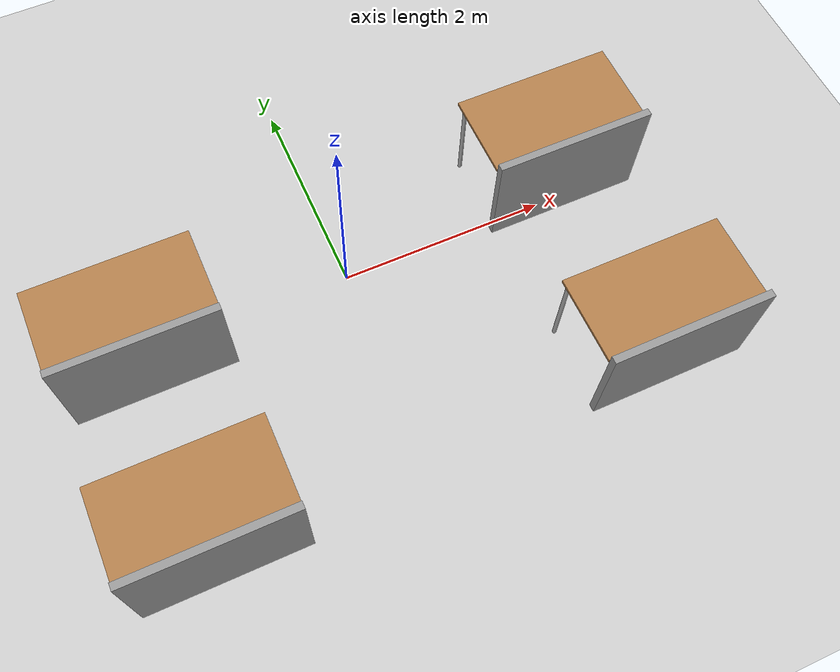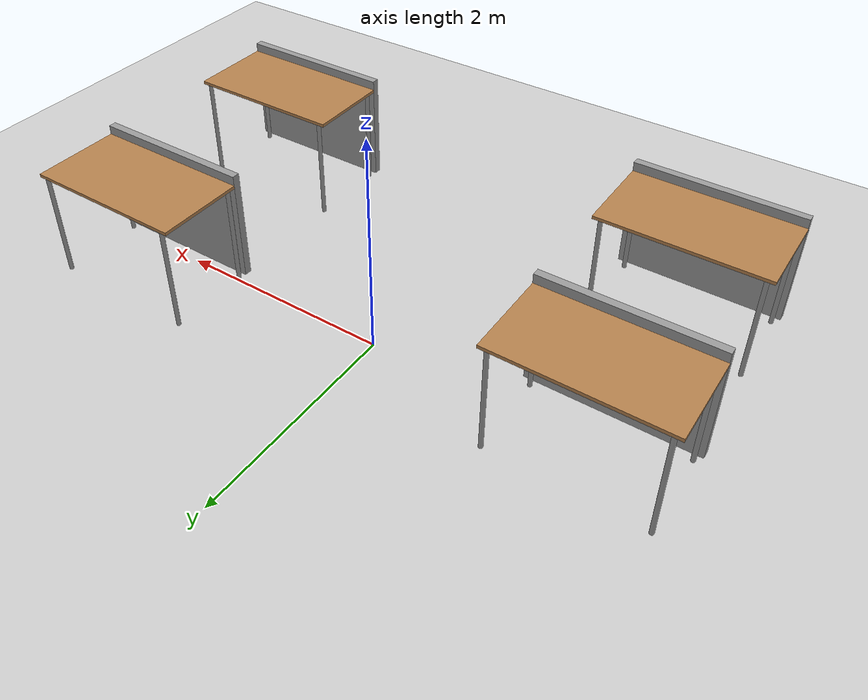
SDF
<sdf version="1.7">
 <world name="default">
  <model name="ground_plane">
   <static>1</static>
   <link name="link">
    <collision name="collision">
     <geometry><plane><normal>0 0 1</normal><size>100 100</size></plane></geometry>
     <surface>
      <contact><collide_bitmask>65535</collide_bitmask></contact>
      <friction><ode><mu>100</mu><mu2>50</mu2></ode></friction>
     </surface>
    </collision>
    <visual name="visual">
     <cast_shadows>0</cast_shadows>
     <geometry><plane><normal>0 0 1</normal><size>100 100</size></plane></geometry>
     <material>
      <script><uri>file://media/materials/scripts/gazebo.material</uri><name>Gazebo/Grey</name></script>
     </material>
    </visual>
   </link>
  </model>
  <model name="table_1">
   <link name="link_0">
    <inertial>
     <mass>0.110662</mass>
     <inertia>
      <ixx>0.0102733</ixx>
      <ixy>0</ixy>
      <ixz>0</ixz>
      <iyy>0.0309528</iyy>
      <iyz>0</iyz>
      <izz>0.0207701</izz>
     </inertia>
    </inertial>
    <pose>-7.12226 3.41462 0.568263 0 -0 0</pose>
    <visual name="visual">
     <geometry><box><size>1.49912 0.070082 1.05314</size></box></geometry>
     <material>
      <lighting>1</lighting>
      <script><uri>file://media/materials/scripts/gazebo.material</uri><name>Gazebo/Grey</name></script>
      <shader type="pixel"/>
      <emissive>0 0 0 1</emissive>
     </material>
    </visual>
    <collision name="collision">
     <geometry><box><size>1.49912 0.070082 1.05314</size></box></geometry>
     <surface>
      <friction>
       <ode><mu>1</mu><mu2>1</mu2><fdir1>0 0 0</fdir1><slip1>0</slip1><slip2>0</slip2></ode>
       <torsional>
        <coefficient>1</coefficient>
        <patch_radius>0</patch_radius>
        <surface_radius>0</surface_radius>
        <use_patch_radius>1</use_patch_radius>
        <ode><slip>0</slip></ode>
       </torsional>
      </friction>
      <bounce><restitution_coefficient>0</restitution_coefficient><threshold>1e+06</threshold></bounce>
      <contact>
       <collide_without_contact>0</collide_without_contact>
       <collide_without_contact_bitmask>1</collide_without_contact_bitmask>
       <collide_bitmask>1</collide_bitmask>
       <ode>
        <soft_cfm>0</soft_cfm>
        <soft_erp>0.2</soft_erp>
        <kp>1e+13</kp>
        <kd>1</kd>
        <max_vel>0.01</max_vel>
        <min_depth>0</min_depth>
       </ode>
       <bullet>
        <split_impulse>1</split_impulse>
        <split_impulse_penetration_threshold>-0.01</split_impulse_penetration_threshold>
        <soft_cfm>0</soft_cfm>
        <soft_erp>0.2</soft_erp>
        <kp>1e+13</kp>
        <kd>1</kd>
       </bullet>
      </contact>
     </surface>
    </collision>
   </link>
   <model name="table_2">
    <static>1</static>
    <link name="link">
     <collision name="surface">
      <pose>0 0 1 0 -0 0</pose>
      <geometry><box><size>1.5 0.8 0.03</size></box></geometry>
      <surface><friction><ode><mu>0.6</mu><mu2>0.6</mu2></ode></friction></surface>
     </collision>
     <visual name="visual1">
      <pose>0 0 1 0 -0 0</pose>
      <geometry><box><size>1.5 0.8 0.03</size></box></geometry>
      <material>
       <script><uri>file://media/materials/scripts/gazebo.material</uri><name>Gazebo/Wood</name></script>
      </material>
     </visual>
     <collision name="front_left_leg">
      <pose>0.68 0.38 0.5 0 -0 0</pose>
      <geometry><cylinder><radius>0.02</radius><length>1</length></cylinder></geometry>
     </collision>
     <visual name="front_left_leg">
      <pose>0.68 0.38 0.5 0 -0 0</pose>
      <geometry><cylinder><radius>0.02</radius><length>1</length></cylinder></geometry>
      <material>
       <script><uri>file://media/materials/scripts/gazebo.material</uri><name>Gazebo/Grey</name></script>
      </material>
     </visual>
     <collision name="front_right_leg">
      <pose>0.68 -0.38 0.5 0 -0 0</pose>
      <geometry><cylinder><radius>0.02</radius><length>1</length></cylinder></geometry>
     </collision>
     <visual name="front_right_leg">
      <pose>0.68 -0.38 0.5 0 -0 0</pose>
      <geometry><cylinder><radius>0.02</radius><length>1</length></cylinder></geometry>
      <material>
       <script><uri>file://media/materials/scripts/gazebo.material</uri><name>Gazebo/Grey</name></script>
      </material>
     </visual>
     <collision name="back_right_leg">
      <pose>-0.68 -0.38 0.5 0 -0 0</pose>
      <geometry><cylinder><radius>0.02</radius><length>1</length></cylinder></geometry>
     </collision>
     <visual name="back_right_leg">
      <pose>-0.68 -0.38 0.5 0 -0 0</pose>
      <geometry><cylinder><radius>0.02</radius><length>1</length></cylinder></geometry>
      <material>
       <script><uri>file://media/materials/scripts/gazebo.material</uri><name>Gazebo/Grey</name></script>
      </material>
     </visual>
     <collision name="back_left_leg">
      <pose>-0.68 0.38 0.5 0 -0 0</pose>
      <geometry><cylinder><radius>0.02</radius><length>1</length></cylinder></geometry>
     </collision>
     <visual name="back_left_leg">
      <pose>-0.68 0.38 0.5 0 -0 0</pose>
      <geometry><cylinder><radius>0.02</radius><length>1</length></cylinder></geometry>
      <material>
       <script><uri>file://media/materials/scripts/gazebo.material</uri><name>Gazebo/Grey</name></script>
      </material>
     </visual>
    </link>
    <pose>-7.12644 3.85171 -0.003143 0 -0 0</pose>
   </model>
   <joint name="link_0_JOINT_1" type="fixed">
    <parent>link_0</parent>
    <child>table_2::link</child>
    <physics>
     <ode><limit><cfm>0</cfm><erp>0.2</erp></limit><suspension><cfm>0</cfm><erp>0.2</erp></suspension></ode>
    </physics>
   </joint>
   <static>0</static>
   <pose>5.15304 -5.61055 0 0 -0 0</pose>
  </model>
  <model name="table_1_1">
   <link name="link_0">
    <inertial>
     <mass>0.110662</mass>
     <inertia>
      <ixx>0.0102733</ixx>
      <ixy>0</ixy>
      <ixz>0</ixz>
      <iyy>0.0309528</iyy>
      <iyz>0</iyz>
      <izz>0.0207701</izz>
     </inertia>
    </inertial>
    <pose>-7.12226 3.41462 0.568263 0 -0 0</pose>
    <visual name="visual">
     <geometry><box><size>1.49912 0.070082 1.05314</size></box></geometry>
     <material>
      <lighting>1</lighting>
      <script><uri>file://media/materials/scripts/gazebo.material</uri><name>Gazebo/Grey</name></script>
      <shader type="pixel"/>
      <emissive>0 0 0 1</emissive>
     </material>
    </visual>
    <collision name="collision">
     <geometry><box><size>1.49912 0.070082 1.05314</size></box></geometry>
     <surface>
      <friction>
       <ode><mu>1</mu><mu2>1</mu2><fdir1>0 0 0</fdir1><slip1>0</slip1><slip2>0</slip2></ode>
       <torsional>
        <coefficient>1</coefficient>
        <patch_radius>0</patch_radius>
        <surface_radius>0</surface_radius>
        <use_patch_radius>1</use_patch_radius>
        <ode><slip>0</slip></ode>
       </torsional>
      </friction>
      <bounce><restitution_coefficient>0</restitution_coefficient><threshold>1e+06</threshold></bounce>
      <contact>
       <collide_without_contact>0</collide_without_contact>
       <collide_without_contact_bitmask>1</collide_without_contact_bitmask>
       <collide_bitmask>1</collide_bitmask>
       <ode>
        <soft_cfm>0</soft_cfm>
        <soft_erp>0.2</soft_erp>
        <kp>1e+13</kp>
        <kd>1</kd>
        <max_vel>0.01</max_vel>
        <min_depth>0</min_depth>
       </ode>
       <bullet>
        <split_impulse>1</split_impulse>
        <split_impulse_penetration_threshold>-0.01</split_impulse_penetration_threshold>
        <soft_cfm>0</soft_cfm>
        <soft_erp>0.2</soft_erp>
        <kp>1e+13</kp>
        <kd>1</kd>
       </bullet>
      </contact>
     </surface>
    </collision>
   </link>
   <model name="table_2">
    <static>1</static>
    <link name="link">
     <collision name="surface">
      <pose>0 0 1 0 -0 0</pose>
      <geometry><box><size>1.5 0.8 0.03</size></box></geometry>
      <surface><friction><ode><mu>0.6</mu><mu2>0.6</mu2></ode></friction></surface>
     </collision>
     <visual name="visual1">
      <pose>0 0 1 0 -0 0</pose>
      <geometry><box><size>1.5 0.8 0.03</size></box></geometry>
      <material>
       <script><uri>file://media/materials/scripts/gazebo.material</uri><name>Gazebo/Wood</name></script>
      </material>
     </visual>
     <collision name="front_left_leg">
      <pose>0.68 0.38 0.5 0 -0 0</pose>
      <geometry><cylinder><radius>0.02</radius><length>1</length></cylinder></geometry>
     </collision>
     <visual name="front_left_leg">
      <pose>0.68 0.38 0.5 0 -0 0</pose>
      <geometry><cylinder><radius>0.02</radius><length>1</length></cylinder></geometry>
      <material>
       <script><uri>file://media/materials/scripts/gazebo.material</uri><name>Gazebo/Grey</name></script>
      </material>
     </visual>
     <collision name="front_right_leg">
      <pose>0.68 -0.38 0.5 0 -0 0</pose>
      <geometry><cylinder><radius>0.02</radius><length>1</length></cylinder></geometry>
     </collision>
     <visual name="front_right_leg">
      <pose>0.68 -0.38 0.5 0 -0 0</pose>
      <geometry><cylinder><radius>0.02</radius><length>1</length></cylinder></geometry>
      <material>
       <script><uri>file://media/materials/scripts/gazebo.material</uri><name>Gazebo/Grey</name></script>
      </material>
     </visual>
     <collision name="back_right_leg">
      <pose>-0.68 -0.38 0.5 0 -0 0</pose>
      <geometry><cylinder><radius>0.02</radius><length>1</length></cylinder></geometry>
     </collision>
     <visual name="back_right_leg">
      <pose>-0.68 -0.38 0.5 0 -0 0</pose>
      <geometry><cylinder><radius>0.02</radius><length>1</length></cylinder></geometry>
      <material>
       <script><uri>file://media/materials/scripts/gazebo.material</uri><name>Gazebo/Grey</name></script>
      </material>
     </visual>
     <collision name="back_left_leg">
      <pose>-0.68 0.38 0.5 0 -0 0</pose>
      <geometry><cylinder><radius>0.02</radius><length>1</length></cylinder></geometry>
     </collision>
     <visual name="back_left_leg">
      <pose>-0.68 0.38 0.5 0 -0 0</pose>
      <geometry><cylinder><radius>0.02</radius><length>1</length></cylinder></geometry>
      <material>
       <script><uri>file://media/materials/scripts/gazebo.material</uri><name>Gazebo/Grey</name></script>
      </material>
     </visual>
    </link>
    <pose>-7.12644 3.85171 -0.003143 0 -0 0</pose>
   </model>
   <joint name="link_0_JOINT_1" type="fixed">
    <parent>link_0</parent>
    <child>table_2::link</child>
    <physics>
     <ode><limit><cfm>0</cfm><erp>0.2</erp></limit><suspension><cfm>0</cfm><erp>0.2</erp></suspension></ode>
    </physics>
   </joint>
   <static>0</static>
   <pose>5.14236 -3.79483 0 0 -0 0</pose>
  </model>
  <model name="table_1_2">
   <link name="link_0">
    <inertial>
     <mass>0.110662</mass>
     <inertia>
      <ixx>0.0102733</ixx>
      <ixy>0</ixy>
      <ixz>0</ixz>
      <iyy>0.0309528</iyy>
      <iyz>0</iyz>
      <izz>0.0207701</izz>
     </inertia>
    </inertial>
    <pose>-7.12226 3.41462 0.568263 0 -0 0</pose>
    <visual name="visual">
     <geometry><box><size>1.49912 0.070082 1.05314</size></box></geometry>
     <material>
      <lighting>1</lighting>
      <script><uri>file://media/materials/scripts/gazebo.material</uri><name>Gazebo/Grey</name></script>
      <shader type="pixel"/>
      <emissive>0 0 0 1</emissive>
     </material>
    </visual>
    <collision name="collision">
     <geometry><box><size>1.49912 0.070082 1.05314</size></box></geometry>
     <surface>
      <friction>
       <ode><mu>1</mu><mu2>1</mu2><fdir1>0 0 0</fdir1><slip1>0</slip1><slip2>0</slip2></ode>
       <torsional>
        <coefficient>1</coefficient>
        <patch_radius>0</patch_radius>
        <surface_radius>0</surface_radius>
        <use_patch_radius>1</use_patch_radius>
        <ode><slip>0</slip></ode>
       </torsional>
      </friction>
      <bounce><restitution_coefficient>0</restitution_coefficient><threshold>1e+06</threshold></bounce>
      <contact>
       <collide_without_contact>0</collide_without_contact>
       <collide_without_contact_bitmask>1</collide_without_contact_bitmask>
       <collide_bitmask>1</collide_bitmask>
       <ode>
        <soft_cfm>0</soft_cfm>
        <soft_erp>0.2</soft_erp>
        <kp>1e+13</kp>
        <kd>1</kd>
        <max_vel>0.01</max_vel>
        <min_depth>0</min_depth>
       </ode>
       <bullet>
        <split_impulse>1</split_impulse>
        <split_impulse_penetration_threshold>-0.01</split_impulse_penetration_threshold>
        <soft_cfm>0</soft_cfm>
        <soft_erp>0.2</soft_erp>
        <kp>1e+13</kp>
        <kd>1</kd>
       </bullet>
      </contact>
     </surface>
    </collision>
   </link>
   <model name="table_2">
    <static>1</static>
    <link name="link">
     <collision name="surface">
      <pose>0 0 1 0 -0 0</pose>
      <geometry><box><size>1.5 0.8 0.03</size></box></geometry>
      <surface><friction><ode><mu>0.6</mu><mu2>0.6</mu2></ode></friction></surface>
     </collision>
     <visual name="visual1">
      <pose>0 0 1 0 -0 0</pose>
      <geometry><box><size>1.5 0.8 0.03</size></box></geometry>
      <material>
       <script><uri>file://media/materials/scripts/gazebo.material</uri><name>Gazebo/Wood</name></script>
      </material>
     </visual>
     <collision name="front_left_leg">
      <pose>0.68 0.38 0.5 0 -0 0</pose>
      <geometry><cylinder><radius>0.02</radius><length>1</length></cylinder></geometry>
     </collision>
     <visual name="front_left_leg">
      <pose>0.68 0.38 0.5 0 -0 0</pose>
      <geometry><cylinder><radius>0.02</radius><length>1</length></cylinder></geometry>
      <material>
       <script><uri>file://media/materials/scripts/gazebo.material</uri><name>Gazebo/Grey</name></script>
      </material>
     </visual>
     <collision name="front_right_leg">
      <pose>0.68 -0.38 0.5 0 -0 0</pose>
      <geometry><cylinder><radius>0.02</radius><length>1</length></cylinder></geometry>
     </collision>
     <visual name="front_right_leg">
      <pose>0.68 -0.38 0.5 0 -0 0</pose>
      <geometry><cylinder><radius>0.02</radius><length>1</length></cylinder></geometry>
      <material>
       <script><uri>file://media/materials/scripts/gazebo.material</uri><name>Gazebo/Grey</name></script>
      </material>
     </visual>
     <collision name="back_right_leg">
      <pose>-0.68 -0.38 0.5 0 -0 0</pose>
      <geometry><cylinder><radius>0.02</radius><length>1</length></cylinder></geometry>
     </collision>
     <visual name="back_right_leg">
      <pose>-0.68 -0.38 0.5 0 -0 0</pose>
      <geometry><cylinder><radius>0.02</radius><length>1</length></cylinder></geometry>
      <material>
       <script><uri>file://media/materials/scripts/gazebo.material</uri><name>Gazebo/Grey</name></script>
      </material>
     </visual>
     <collision name="back_left_leg">
      <pose>-0.68 0.38 0.5 0 -0 0</pose>
      <geometry><cylinder><radius>0.02</radius><length>1</length></cylinder></geometry>
     </collision>
     <visual name="back_left_leg">
      <pose>-0.68 0.38 0.5 0 -0 0</pose>
      <geometry><cylinder><radius>0.02</radius><length>1</length></cylinder></geometry>
      <material>
       <script><uri>file://media/materials/scripts/gazebo.material</uri><name>Gazebo/Grey</name></script>
      </material>
     </visual>
    </link>
    <pose>-7.12644 3.85171 -0.003143 0 -0 0</pose>
   </model>
   <joint name="link_0_JOINT_1" type="fixed">
    <parent>link_0</parent>
    <child>table_2::link</child>
    <physics>
     <ode><limit><cfm>0</cfm><erp>0.2</erp></limit><suspension><cfm>0</cfm><erp>0.2</erp></suspension></ode>
    </physics>
   </joint>
   <static>0</static>
   <pose>9.33201 -3.50763 0 0 -0 0</pose>
  </model>
  <model name="table_1_0">
   <link name="link_0">
    <inertial>
     <mass>0.110662</mass>
     <inertia>
      <ixx>0.0102733</ixx>
      <ixy>0</ixy>
      <ixz>0</ixz>
      <iyy>0.0309528</iyy>
      <iyz>0</iyz>
      <izz>0.0207701</izz>
     </inertia>
    </inertial>
    <pose>-7.12226 3.41462 0.568263 0 -0 0</pose>
    <visual name="visual">
     <geometry><box><size>1.49912 0.070082 1.05314</size></box></geometry>
     <material>
      <lighting>1</lighting>
      <script><uri>file://media/materials/scripts/gazebo.material</uri><name>Gazebo/Grey</name></script>
      <shader type="pixel"/>
      <emissive>0 0 0 1</emissive>
     </material>
    </visual>
    <collision name="collision">
     <geometry><box><size>1.49912 0.070082 1.05314</size></box></geometry>
     <surface>
      <friction>
       <ode><mu>1</mu><mu2>1</mu2><fdir1>0 0 0</fdir1><slip1>0</slip1><slip2>0</slip2></ode>
       <torsional>
        <coefficient>1</coefficient>
        <patch_radius>0</patch_radius>
        <surface_radius>0</surface_radius>
        <use_patch_radius>1</use_patch_radius>
        <ode><slip>0</slip></ode>
       </torsional>
      </friction>
      <bounce><restitution_coefficient>0</restitution_coefficient><threshold>1e+06</threshold></bounce>
      <contact>
       <collide_without_contact>0</collide_without_contact>
       <collide_without_contact_bitmask>1</collide_without_contact_bitmask>
       <collide_bitmask>1</collide_bitmask>
       <ode>
        <soft_cfm>0</soft_cfm>
        <soft_erp>0.2</soft_erp>
        <kp>1e+13</kp>
        <kd>1</kd>
        <max_vel>0.01</max_vel>
        <min_depth>0</min_depth>
       </ode>
       <bullet>
        <split_impulse>1</split_impulse>
        <split_impulse_penetration_threshold>-0.01</split_impulse_penetration_threshold>
        <soft_cfm>0</soft_cfm>
        <soft_erp>0.2</soft_erp>
        <kp>1e+13</kp>
        <kd>1</kd>
       </bullet>
      </contact>
     </surface>
    </collision>
   </link>
   <model name="table_2">
    <static>1</static>
    <link name="link">
     <collision name="surface">
      <pose>0 0 1 0 -0 0</pose>
      <geometry><box><size>1.5 0.8 0.03</size></box></geometry>
      <surface><friction><ode><mu>0.6</mu><mu2>0.6</mu2></ode></friction></surface>
     </collision>
     <visual name="visual1">
      <pose>0 0 1 0 -0 0</pose>
      <geometry><box><size>1.5 0.8 0.03</size></box></geometry>
      <material>
       <script><uri>file://media/materials/scripts/gazebo.material</uri><name>Gazebo/Wood</name></script>
      </material>
     </visual>
     <collision name="front_left_leg">
      <pose>0.68 0.38 0.5 0 -0 0</pose>
      <geometry><cylinder><radius>0.02</radius><length>1</length></cylinder></geometry>
     </collision>
     <visual name="front_left_leg">
      <pose>0.68 0.38 0.5 0 -0 0</pose>
      <geometry><cylinder><radius>0.02</radius><length>1</length></cylinder></geometry>
      <material>
       <script><uri>file://media/materials/scripts/gazebo.material</uri><name>Gazebo/Grey</name></script>
      </material>
     </visual>
     <collision name="front_right_leg">
      <pose>0.68 -0.38 0.5 0 -0 0</pose>
      <geometry><cylinder><radius>0.02</radius><length>1</length></cylinder></geometry>
     </collision>
     <visual name="front_right_leg">
      <pose>0.68 -0.38 0.5 0 -0 0</pose>
      <geometry><cylinder><radius>0.02</radius><length>1</length></cylinder></geometry>
      <material>
       <script><uri>file://media/materials/scripts/gazebo.material</uri><name>Gazebo/Grey</name></script>
      </material>
     </visual>
     <collision name="back_right_leg">
      <pose>-0.68 -0.38 0.5 0 -0 0</pose>
      <geometry><cylinder><radius>0.02</radius><length>1</length></cylinder></geometry>
     </collision>
     <visual name="back_right_leg">
      <pose>-0.68 -0.38 0.5 0 -0 0</pose>
      <geometry><cylinder><radius>0.02</radius><length>1</length></cylinder></geometry>
      <material>
       <script><uri>file://media/materials/scripts/gazebo.material</uri><name>Gazebo/Grey</name></script>
      </material>
     </visual>
     <collision name="back_left_leg">
      <pose>-0.68 0.38 0.5 0 -0 0</pose>
      <geometry><cylinder><radius>0.02</radius><length>1</length></cylinder></geometry>
     </collision>
     <visual name="back_left_leg">
      <pose>-0.68 0.38 0.5 0 -0 0</pose>
      <geometry><cylinder><radius>0.02</radius><length>1</length></cylinder></geometry>
      <material>
       <script><uri>file://media/materials/scripts/gazebo.material</uri><name>Gazebo/Grey</name></script>
      </material>
     </visual>
    </link>
    <pose>-7.12644 3.85171 -0.003143 0 -0 0</pose>
   </model>
   <joint name="link_0_JOINT_1" type="fixed">
    <parent>link_0</parent>
    <child>table_2::link</child>
    <physics>
     <ode><limit><cfm>0</cfm><erp>0.2</erp></limit><suspension><cfm>0</cfm><erp>0.2</erp></suspension></ode>
    </physics>
   </joint>
   <static>0</static>
   <pose>9.33823 -5.51792 -2e-06 0 0 -7e-06</pose>
  </model>
 </world>
</sdf>
